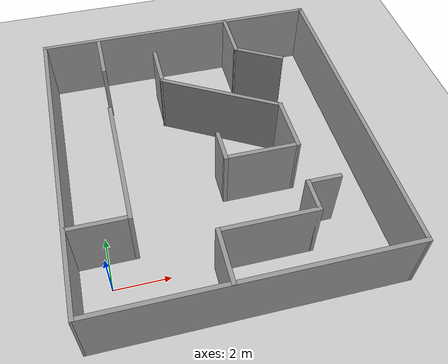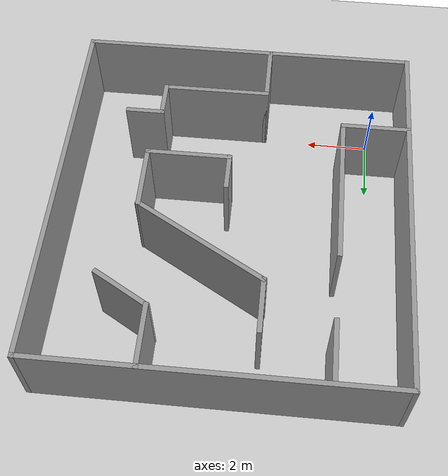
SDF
<sdf version="1.6">
 <world name="default">
  <light name="sun" type="directional">
   <pose>0 0 10 0 -0 0</pose>
   <diffuse>0.8 0.8 0.8 1</diffuse>
   <specular>0.2 0.2 0.2 1</specular>
   <attenuation>
    <range>1000</range>
    <constant>0.9</constant>
    <linear>0.01</linear>
    <quadratic>0.001</quadratic>
   </attenuation>
   <direction>-0.5 0.1 -0.9</direction>
  </light>
  <model name="ground_plane">
   <static>1</static>
   <link name="link">
    <collision name="collision">
     <geometry><plane><normal>0 0 1</normal><size>100 100</size></plane></geometry>
     <surface><friction><ode><mu>100</mu><mu2>50</mu2></ode></friction></surface>
    </collision>
    <visual name="visual">
     <cast_shadows>0</cast_shadows>
     <geometry><plane><normal>0 0 1</normal><size>100 100</size></plane></geometry>
     <material>
      <script><uri>file://media/materials/scripts/gazebo.material</uri><name>Gazebo/Grey</name></script>
     </material>
    </visual>
   </link>
  </model>
  <gravity>0 0 -9.8</gravity>
  <magnetic_field>6e-06 2.3e-05 -4.2e-05</magnetic_field>
  <atmosphere type="adiabatic"/>
  <physics name="default_physics" default="0" type="ode">
   <max_step_size>0.001</max_step_size>
   <real_time_factor>1</real_time_factor>
   <real_time_update_rate>1000</real_time_update_rate>
  </physics>
  <scene><ambient>0.4 0.4 0.4 1</ambient><background>0.7 0.7 0.7 1</background><shadows>1</shadows></scene>
  <spherical_coordinates>
   <surface_model>EARTH_WGS84</surface_model>
   <latitude_deg>0</latitude_deg>
   <longitude_deg>0</longitude_deg>
   <elevation>0</elevation>
   <heading_deg>0</heading_deg>
  </spherical_coordinates>
  <model name="Testing_Env_2">
   <pose>4.32833 4.02019 0 0 -0 0</pose>
   <link name="Wall_12">
    <collision name="Wall_12_Collision">
     <geometry><box><size>12 0.15 2.5</size></box></geometry>
     <pose>0 0 1.25 0 -0 0</pose>
    </collision>
    <visual name="Wall_12_Visual">
     <pose>0 0 1.25 0 -0 0</pose>
     <geometry><box><size>12 0.15 2.5</size></box></geometry>
     <material>
      <script><uri>file://media/materials/scripts/gazebo.material</uri><name>Gazebo/Grey</name></script>
      <ambient>1 1 1 1</ambient>
     </material>
     <meta><layer>0</layer></meta>
    </visual>
    <pose>-5.425 0.00186 0 0 -0 1.5708</pose>
   </link>
   <link name="Wall_18">
    <collision name="Wall_18_Collision">
     <geometry><box><size>11 0.15 2.5</size></box></geometry>
     <pose>0 0 1.25 0 -0 0</pose>
    </collision>
    <visual name="Wall_18_Visual">
     <pose>0 0 1.25 0 -0 0</pose>
     <geometry><box><size>11 0.15 2.5</size></box></geometry>
     <material>
      <script><uri>file://media/materials/scripts/gazebo.material</uri><name>Gazebo/Grey</name></script>
      <ambient>1 1 1 1</ambient>
     </material>
     <meta><layer>0</layer></meta>
    </visual>
    <pose>-0 -5.92499 0 0 -0 -0.000341</pose>
   </link>
   <link name="Wall_20">
    <collision name="Wall_20_Collision">
     <geometry><box><size>12 0.15 2.5</size></box></geometry>
     <pose>0 0 1.25 0 -0 0</pose>
    </collision>
    <visual name="Wall_20_Visual">
     <pose>0 0 1.25 0 -0 0</pose>
     <geometry><box><size>12 0.15 2.5</size></box></geometry>
     <material>
      <script><uri>file://media/materials/scripts/gazebo.material</uri><name>Gazebo/Grey</name></script>
      <ambient>1 1 1 1</ambient>
     </material>
     <meta><layer>0</layer></meta>
    </visual>
    <pose>5.425 -0.001836 0 0 -0 1.5708</pose>
   </link>
   <link name="Wall_22">
    <collision name="Wall_22_Collision">
     <geometry><box><size>11 0.15 2.5</size></box></geometry>
     <pose>0 0 1.25 0 -0 0</pose>
    </collision>
    <visual name="Wall_22_Visual">
     <pose>0 0 1.25 0 -0 0</pose>
     <geometry><box><size>11 0.15 2.5</size></box></geometry>
     <material>
      <script><uri>file://media/materials/scripts/gazebo.material</uri><name>Gazebo/Grey</name></script>
      <ambient>1 1 1 1</ambient>
     </material>
     <meta><layer>0</layer></meta>
    </visual>
    <pose>-0 5.92316 0 0 -0 3.14159</pose>
   </link>
   <link name="Wall_25">
    <collision name="Wall_25_Collision">
     <geometry><box><size>2 0.15 2.5</size></box></geometry>
     <pose>0 0 1.25 0 -0 0</pose>
    </collision>
    <visual name="Wall_25_Visual">
     <pose>0 0 1.25 0 -0 0</pose>
     <geometry><box><size>2 0.15 2.5</size></box></geometry>
     <material>
      <script><uri>file://media/materials/scripts/gazebo.material</uri><name>Gazebo/Grey</name></script>
      <ambient>1 1 1 1</ambient>
     </material>
     <meta><layer>0</layer></meta>
    </visual>
    <pose>-0.762489 -4.98888 0 0 -0 1.5708</pose>
   </link>
   <link name="Wall_26">
    <collision name="Wall_26_Collision">
     <geometry><box><size>3.5 0.15 2.5</size></box></geometry>
     <pose>0 0 1.25 0 -0 0</pose>
    </collision>
    <visual name="Wall_26_Visual">
     <pose>0 0 1.25 0 -0 0</pose>
     <geometry><box><size>3.5 0.15 2.5</size></box></geometry>
     <material>
      <script><uri>file://media/materials/scripts/gazebo.material</uri><name>Gazebo/Grey</name></script>
      <ambient>1 1 1 1</ambient>
     </material>
     <meta><layer>0</layer></meta>
    </visual>
    <pose>0.912511 -4.06388 0 0 -0 0</pose>
   </link>
   <link name="Wall_28">
    <collision name="Wall_28_Collision">
     <geometry><box><size>4.75 0.15 2.5</size></box></geometry>
     <pose>0 0 1.25 0 -0 0</pose>
    </collision>
    <visual name="Wall_28_Visual">
     <pose>0 0 1.25 0 -0 0</pose>
     <geometry><box><size>4.75 0.15 2.5</size></box></geometry>
     <material>
      <script><uri>file://media/materials/scripts/gazebo.material</uri><name>Gazebo/Grey</name></script>
      <ambient>1 1 1 1</ambient>
     </material>
     <meta><layer>0</layer></meta>
    </visual>
    <pose>0.812159 1.81113 0 0 -0 2.61799</pose>
   </link>
   <link name="Wall_29">
    <collision name="Wall_29_Collision">
     <geometry><box><size>1.75 0.15 2.5</size></box></geometry>
     <pose>0 0 1.25 0 -0 0</pose>
    </collision>
    <visual name="Wall_29_Visual">
     <pose>0 0 1.25 0 -0 0</pose>
     <geometry><box><size>1.75 0.15 2.5</size></box></geometry>
     <material>
      <script><uri>file://media/materials/scripts/gazebo.material</uri><name>Gazebo/Grey</name></script>
      <ambient>1 1 1 1</ambient>
     </material>
     <meta><layer>0</layer></meta>
    </visual>
    <pose>-1.1797 3.76113 0 0 -0 1.5708</pose>
   </link>
   <link name="Wall_31">
    <collision name="Wall_31_Collision">
     <geometry><box><size>2 0.15 2.5</size></box></geometry>
     <pose>0 0 1.25 0 -0 0</pose>
    </collision>
    <visual name="Wall_31_Visual">
     <pose>0 0 1.25 0 -0 0</pose>
     <geometry><box><size>2 0.15 2.5</size></box></geometry>
     <material>
      <script><uri>file://media/materials/scripts/gazebo.material</uri><name>Gazebo/Grey</name></script>
      <ambient>1 1 1 1</ambient>
     </material>
     <meta><layer>0</layer></meta>
    </visual>
    <pose>2.04308 4.99406 0 0 -0 -1.5708</pose>
   </link>
   <link name="Wall_33">
    <collision name="Wall_33_Collision">
     <geometry><box><size>2.75 0.15 2.5</size></box></geometry>
     <pose>0 0 1.25 0 -0 0</pose>
    </collision>
    <visual name="Wall_33_Visual">
     <pose>0 0 1.25 0 -0 0</pose>
     <geometry><box><size>2.75 0.15 2.5</size></box></geometry>
     <material>
      <script><uri>file://media/materials/scripts/gazebo.material</uri><name>Gazebo/Grey</name></script>
      <ambient>1 1 1 1</ambient>
     </material>
     <meta><layer>0</layer></meta>
    </visual>
    <pose>1.50938 -1.31622 0 0 -0 3.14159</pose>
   </link>
   <link name="Wall_37">
    <collision name="Wall_37_Collision">
     <geometry><box><size>2.12736 0.15 2.5</size></box></geometry>
     <pose>0 0 1.25 0 -0 0</pose>
    </collision>
    <visual name="Wall_37_Visual">
     <pose>0 0 1.25 0 -0 0</pose>
     <geometry><box><size>2.12736 0.15 2.5</size></box></geometry>
     <material>
      <script><uri>file://media/materials/scripts/gazebo.material</uri><name>Gazebo/Grey</name></script>
      <ambient>1 1 1 1</ambient>
     </material>
     <meta><layer>0</layer></meta>
    </visual>
    <pose>2.8067 -0.32755 0 0 -0 1.57351</pose>
   </link>
   <link name="Wall_39">
    <collision name="Wall_39_Collision">
     <geometry><box><size>1.25 0.15 2.5</size></box></geometry>
     <pose>0 0 1.25 0 -0 0</pose>
    </collision>
    <visual name="Wall_39_Visual">
     <pose>0 0 1.25 0 -0 0</pose>
     <geometry><box><size>1.25 0.15 2.5</size></box></geometry>
     <material>
      <script><uri>file://media/materials/scripts/gazebo.material</uri><name>Gazebo/Grey</name></script>
      <ambient>1 1 1 1</ambient>
     </material>
     <meta><layer>0</layer></meta>
    </visual>
    <pose>2.58751 -3.51388 0 0 -0 1.5708</pose>
   </link>
   <link name="Wall_40">
    <collision name="Wall_40_Collision">
     <geometry><box><size>1.25 0.15 2.5</size></box></geometry>
     <pose>0 0 1.25 0 -0 0</pose>
    </collision>
    <visual name="Wall_40_Visual">
     <pose>0 0 1.25 0 -0 0</pose>
     <geometry><box><size>1.25 0.15 2.5</size></box></geometry>
     <material>
      <script><uri>file://media/materials/scripts/gazebo.material</uri><name>Gazebo/Grey</name></script>
      <ambient>1 1 1 1</ambient>
     </material>
     <meta><layer>0</layer></meta>
    </visual>
    <pose>3.13751 -2.96387 0 0 -0 0</pose>
   </link>
   <link name="Wall_42">
    <collision name="Wall_42_Collision">
     <geometry><box><size>2.25 0.15 2.5</size></box></geometry>
     <pose>0 0 1.25 0 -0 0</pose>
    </collision>
    <visual name="Wall_42_Visual">
     <pose>0 0 1.25 0 -0 0</pose>
     <geometry><box><size>2.25 0.15 2.5</size></box></geometry>
     <material>
      <script><uri>file://media/materials/scripts/gazebo.material</uri><name>Gazebo/Grey</name></script>
      <ambient>1 1 1 1</ambient>
     </material>
     <meta><layer>0</layer></meta>
    </visual>
    <pose>-4.37354 -2.93956 0 0 -0 0</pose>
   </link>
   <link name="Wall_43">
    <collision name="Wall_43_Collision">
     <geometry><box><size>5 0.15 2.5</size></box></geometry>
     <pose>0 0 1.25 0 -0 0</pose>
    </collision>
    <visual name="Wall_43_Visual">
     <pose>0 0 1.25 0 -0 0</pose>
     <geometry><box><size>5 0.15 2.5</size></box></geometry>
     <material>
      <script><uri>file://media/materials/scripts/gazebo.material</uri><name>Gazebo/Grey</name></script>
      <ambient>1 1 1 1</ambient>
     </material>
     <meta><layer>0</layer></meta>
    </visual>
    <pose>-3.32354 -0.514562 0 0 -0 1.5708</pose>
   </link>
   <link name="Wall_48">
    <collision name="Wall_48_Collision">
     <geometry><box><size>2 0.15 2.5</size></box></geometry>
     <pose>0 0 1.25 0 -0 0</pose>
    </collision>
    <visual name="Wall_48_Visual">
     <pose>0 0 1.25 0 -0 0</pose>
     <geometry><box><size>2 0.15 2.5</size></box></geometry>
     <material>
      <script><uri>file://media/materials/scripts/gazebo.material</uri><name>Gazebo/Grey</name></script>
      <ambient>1 1 1 1</ambient>
     </material>
     <meta><layer>0</layer></meta>
    </visual>
    <pose>2.84415 3.60656 0 0 -0 -0.523599</pose>
   </link>
   <link name="Wall_53">
    <collision name="Wall_53_Collision">
     <geometry><box><size>2 0.15 2.5</size></box></geometry>
     <pose>0 0 1.25 0 -0 0</pose>
    </collision>
    <visual name="Wall_53_Visual">
     <pose>0 0 1.25 0 -0 0</pose>
     <geometry><box><size>2 0.15 2.5</size></box></geometry>
     <material>
      <script><uri>file://media/materials/scripts/gazebo.material</uri><name>Gazebo/Grey</name></script>
      <ambient>1 1 1 1</ambient>
     </material>
     <meta><layer>0</layer></meta>
    </visual>
    <pose>-3.28518 4.98465 0 0 -0 -1.5708</pose>
   </link>
   <link name="Wall_55">
    <collision name="Wall_55_Collision">
     <geometry><box><size>1.25 0.15 2.5</size></box></geometry>
     <pose>0 0 1.25 0 -0 0</pose>
    </collision>
    <visual name="Wall_55_Visual">
     <pose>0 0 1.25 0 -0 0</pose>
     <geometry><box><size>1.25 0.15 2.5</size></box></geometry>
     <material>
      <script><uri>file://media/materials/scripts/gazebo.material</uri><name>Gazebo/Grey</name></script>
      <ambient>1 1 1 1</ambient>
     </material>
     <meta><layer>0</layer></meta>
    </visual>
    <pose>0.209379 -0.766225 0 0 -0 1.5708</pose>
   </link>
   <static>1</static>
  </model>
 </world>
</sdf>
